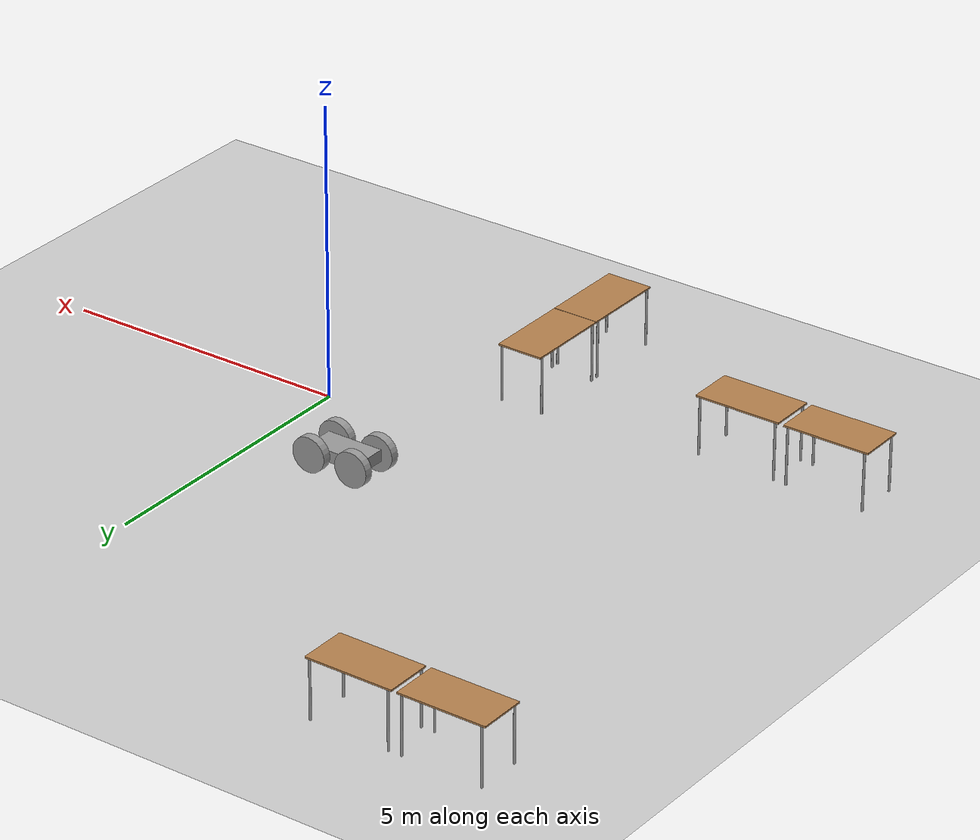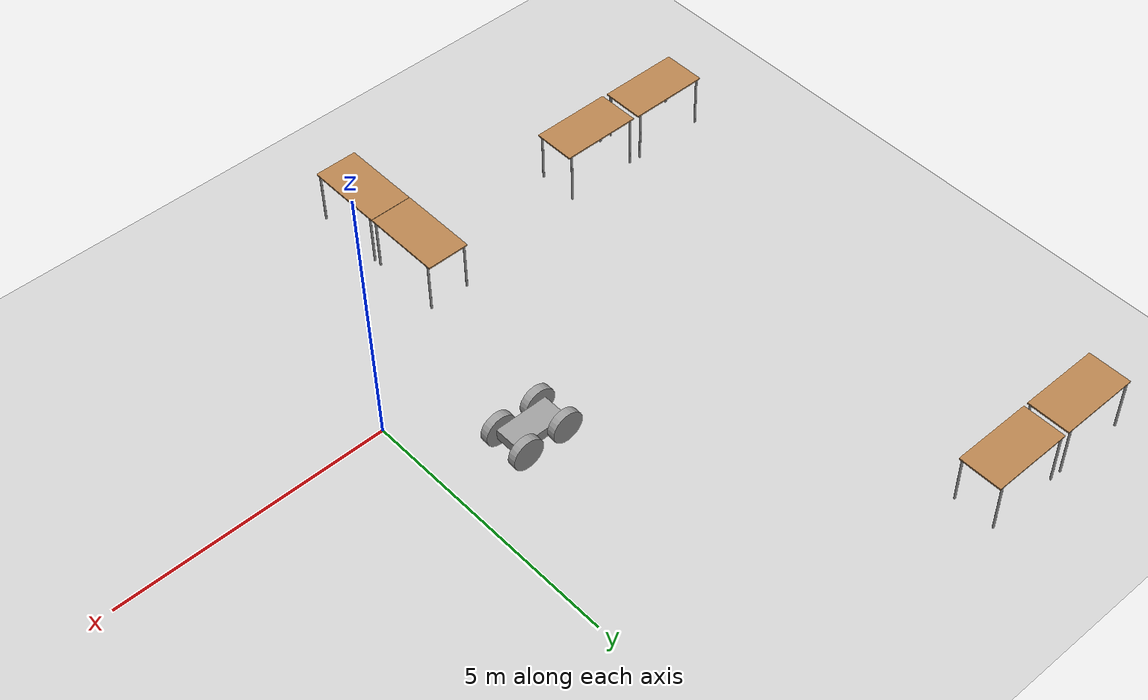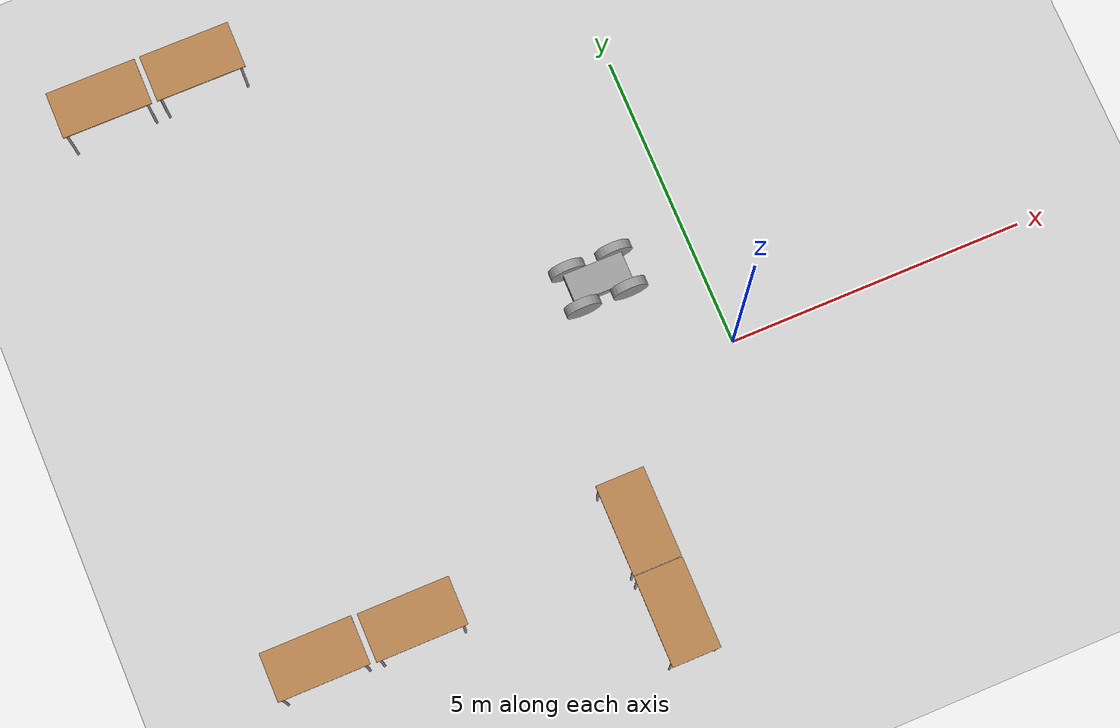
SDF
<sdf version="1.6">
 <world name="default">
  <model name="ground_plane">
   <static>1</static>
   <link name="link">
    <collision name="collision">
     <geometry><plane><normal>0 0 1</normal><size>100 100</size></plane></geometry>
     <surface>
      <contact><collide_bitmask>65535</collide_bitmask></contact>
      <friction><ode><mu>100</mu><mu2>50</mu2></ode></friction>
     </surface>
    </collision>
    <visual name="visual">
     <cast_shadows>0</cast_shadows>
     <geometry><plane><normal>0 0 1</normal><size>100 100</size></plane></geometry>
     <material>
      <script><uri>file://media/materials/scripts/gazebo.material</uri><name>Gazebo/Grey</name></script>
     </material>
    </visual>
   </link>
  </model>
  <model name="table">
   <static>1</static>
   <link name="link">
    <collision name="surface">
     <pose>0 0 1 0 -0 0</pose>
     <geometry><box><size>1.5 0.8 0.03</size></box></geometry>
     <surface><friction><ode><mu>0.6</mu><mu2>0.6</mu2></ode></friction></surface>
    </collision>
    <visual name="visual1">
     <pose>0 0 1 0 -0 0</pose>
     <geometry><box><size>1.5 0.8 0.03</size></box></geometry>
     <material>
      <script><uri>file://media/materials/scripts/gazebo.material</uri><name>Gazebo/Wood</name></script>
     </material>
    </visual>
    <collision name="front_left_leg">
     <pose>0.68 0.38 0.5 0 -0 0</pose>
     <geometry><cylinder><radius>0.02</radius><length>1</length></cylinder></geometry>
    </collision>
    <visual name="front_left_leg">
     <pose>0.68 0.38 0.5 0 -0 0</pose>
     <geometry><cylinder><radius>0.02</radius><length>1</length></cylinder></geometry>
     <material>
      <script><uri>file://media/materials/scripts/gazebo.material</uri><name>Gazebo/Grey</name></script>
     </material>
    </visual>
    <collision name="front_right_leg">
     <pose>0.68 -0.38 0.5 0 -0 0</pose>
     <geometry><cylinder><radius>0.02</radius><length>1</length></cylinder></geometry>
    </collision>
    <visual name="front_right_leg">
     <pose>0.68 -0.38 0.5 0 -0 0</pose>
     <geometry><cylinder><radius>0.02</radius><length>1</length></cylinder></geometry>
     <material>
      <script><uri>file://media/materials/scripts/gazebo.material</uri><name>Gazebo/Grey</name></script>
     </material>
    </visual>
    <collision name="back_right_leg">
     <pose>-0.68 -0.38 0.5 0 -0 0</pose>
     <geometry><cylinder><radius>0.02</radius><length>1</length></cylinder></geometry>
    </collision>
    <visual name="back_right_leg">
     <pose>-0.68 -0.38 0.5 0 -0 0</pose>
     <geometry><cylinder><radius>0.02</radius><length>1</length></cylinder></geometry>
     <material>
      <script><uri>file://media/materials/scripts/gazebo.material</uri><name>Gazebo/Grey</name></script>
     </material>
    </visual>
    <collision name="back_left_leg">
     <pose>-0.68 0.38 0.5 0 -0 0</pose>
     <geometry><cylinder><radius>0.02</radius><length>1</length></cylinder></geometry>
    </collision>
    <visual name="back_left_leg">
     <pose>-0.68 0.38 0.5 0 -0 0</pose>
     <geometry><cylinder><radius>0.02</radius><length>1</length></cylinder></geometry>
     <material>
      <script><uri>file://media/materials/scripts/gazebo.material</uri><name>Gazebo/Grey</name></script>
     </material>
    </visual>
   </link>
   <pose>-2.6 -2.20171 0 0 -0 1.57</pose>
  </model>
  <model name="table_clone">
   <static>1</static>
   <link name="link">
    <collision name="surface">
     <pose>0 0 1 0 -0 0</pose>
     <geometry><box><size>1.5 0.8 0.03</size></box></geometry>
     <surface><friction><ode><mu>0.6</mu><mu2>0.6</mu2></ode></friction></surface>
    </collision>
    <visual name="visual1">
     <pose>0 0 1 0 -0 0</pose>
     <geometry><box><size>1.5 0.8 0.03</size></box></geometry>
     <material>
      <script><uri>file://media/materials/scripts/gazebo.material</uri><name>Gazebo/Wood</name></script>
     </material>
    </visual>
    <collision name="front_left_leg">
     <pose>0.68 0.38 0.5 0 -0 0</pose>
     <geometry><cylinder><radius>0.02</radius><length>1</length></cylinder></geometry>
    </collision>
    <visual name="front_left_leg">
     <pose>0.68 0.38 0.5 0 -0 0</pose>
     <geometry><cylinder><radius>0.02</radius><length>1</length></cylinder></geometry>
     <material>
      <script><uri>file://media/materials/scripts/gazebo.material</uri><name>Gazebo/Grey</name></script>
     </material>
    </visual>
    <collision name="front_right_leg">
     <pose>0.68 -0.38 0.5 0 -0 0</pose>
     <geometry><cylinder><radius>0.02</radius><length>1</length></cylinder></geometry>
    </collision>
    <visual name="front_right_leg">
     <pose>0.68 -0.38 0.5 0 -0 0</pose>
     <geometry><cylinder><radius>0.02</radius><length>1</length></cylinder></geometry>
     <material>
      <script><uri>file://media/materials/scripts/gazebo.material</uri><name>Gazebo/Grey</name></script>
     </material>
    </visual>
    <collision name="back_right_leg">
     <pose>-0.68 -0.38 0.5 0 -0 0</pose>
     <geometry><cylinder><radius>0.02</radius><length>1</length></cylinder></geometry>
    </collision>
    <visual name="back_right_leg">
     <pose>-0.68 -0.38 0.5 0 -0 0</pose>
     <geometry><cylinder><radius>0.02</radius><length>1</length></cylinder></geometry>
     <material>
      <script><uri>file://media/materials/scripts/gazebo.material</uri><name>Gazebo/Grey</name></script>
     </material>
    </visual>
    <collision name="back_left_leg">
     <pose>-0.68 0.38 0.5 0 -0 0</pose>
     <geometry><cylinder><radius>0.02</radius><length>1</length></cylinder></geometry>
    </collision>
    <visual name="back_left_leg">
     <pose>-0.68 0.38 0.5 0 -0 0</pose>
     <geometry><cylinder><radius>0.02</radius><length>1</length></cylinder></geometry>
     <material>
      <script><uri>file://media/materials/scripts/gazebo.material</uri><name>Gazebo/Grey</name></script>
     </material>
    </visual>
   </link>
   <pose>-2.59868 -3.71187 0 0 -0 1.57</pose>
  </model>
  <model name="table_clone_0">
   <static>1</static>
   <link name="link">
    <collision name="surface">
     <pose>0 0 1 0 -0 0</pose>
     <geometry><box><size>1.5 0.8 0.03</size></box></geometry>
     <surface><friction><ode><mu>0.6</mu><mu2>0.6</mu2></ode></friction></surface>
    </collision>
    <visual name="visual1">
     <pose>0 0 1 0 -0 0</pose>
     <geometry><box><size>1.5 0.8 0.03</size></box></geometry>
     <material>
      <script><uri>file://media/materials/scripts/gazebo.material</uri><name>Gazebo/Wood</name></script>
     </material>
    </visual>
    <collision name="front_left_leg">
     <pose>0.68 0.38 0.5 0 -0 0</pose>
     <geometry><cylinder><radius>0.02</radius><length>1</length></cylinder></geometry>
    </collision>
    <visual name="front_left_leg">
     <pose>0.68 0.38 0.5 0 -0 0</pose>
     <geometry><cylinder><radius>0.02</radius><length>1</length></cylinder></geometry>
     <material>
      <script><uri>file://media/materials/scripts/gazebo.material</uri><name>Gazebo/Grey</name></script>
     </material>
    </visual>
    <collision name="front_right_leg">
     <pose>0.68 -0.38 0.5 0 -0 0</pose>
     <geometry><cylinder><radius>0.02</radius><length>1</length></cylinder></geometry>
    </collision>
    <visual name="front_right_leg">
     <pose>0.68 -0.38 0.5 0 -0 0</pose>
     <geometry><cylinder><radius>0.02</radius><length>1</length></cylinder></geometry>
     <material>
      <script><uri>file://media/materials/scripts/gazebo.material</uri><name>Gazebo/Grey</name></script>
     </material>
    </visual>
    <collision name="back_right_leg">
     <pose>-0.68 -0.38 0.5 0 -0 0</pose>
     <geometry><cylinder><radius>0.02</radius><length>1</length></cylinder></geometry>
    </collision>
    <visual name="back_right_leg">
     <pose>-0.68 -0.38 0.5 0 -0 0</pose>
     <geometry><cylinder><radius>0.02</radius><length>1</length></cylinder></geometry>
     <material>
      <script><uri>file://media/materials/scripts/gazebo.material</uri><name>Gazebo/Grey</name></script>
     </material>
    </visual>
    <collision name="back_left_leg">
     <pose>-0.68 0.38 0.5 0 -0 0</pose>
     <geometry><cylinder><radius>0.02</radius><length>1</length></cylinder></geometry>
    </collision>
    <visual name="back_left_leg">
     <pose>-0.68 0.38 0.5 0 -0 0</pose>
     <geometry><cylinder><radius>0.02</radius><length>1</length></cylinder></geometry>
     <material>
      <script><uri>file://media/materials/scripts/gazebo.material</uri><name>Gazebo/Grey</name></script>
     </material>
    </visual>
   </link>
   <pose>-7.94747 -2.24435 0 0 -0 0</pose>
  </model>
  <model name="table_clone_0_clone">
   <static>1</static>
   <link name="link">
    <collision name="surface">
     <pose>0 0 1 0 -0 0</pose>
     <geometry><box><size>1.5 0.8 0.03</size></box></geometry>
     <surface><friction><ode><mu>0.6</mu><mu2>0.6</mu2></ode></friction></surface>
    </collision>
    <visual name="visual1">
     <pose>0 0 1 0 -0 0</pose>
     <geometry><box><size>1.5 0.8 0.03</size></box></geometry>
     <material>
      <script><uri>file://media/materials/scripts/gazebo.material</uri><name>Gazebo/Wood</name></script>
     </material>
    </visual>
    <collision name="front_left_leg">
     <pose>0.68 0.38 0.5 0 -0 0</pose>
     <geometry><cylinder><radius>0.02</radius><length>1</length></cylinder></geometry>
    </collision>
    <visual name="front_left_leg">
     <pose>0.68 0.38 0.5 0 -0 0</pose>
     <geometry><cylinder><radius>0.02</radius><length>1</length></cylinder></geometry>
     <material>
      <script><uri>file://media/materials/scripts/gazebo.material</uri><name>Gazebo/Grey</name></script>
     </material>
    </visual>
    <collision name="front_right_leg">
     <pose>0.68 -0.38 0.5 0 -0 0</pose>
     <geometry><cylinder><radius>0.02</radius><length>1</length></cylinder></geometry>
    </collision>
    <visual name="front_right_leg">
     <pose>0.68 -0.38 0.5 0 -0 0</pose>
     <geometry><cylinder><radius>0.02</radius><length>1</length></cylinder></geometry>
     <material>
      <script><uri>file://media/materials/scripts/gazebo.material</uri><name>Gazebo/Grey</name></script>
     </material>
    </visual>
    <collision name="back_right_leg">
     <pose>-0.68 -0.38 0.5 0 -0 0</pose>
     <geometry><cylinder><radius>0.02</radius><length>1</length></cylinder></geometry>
    </collision>
    <visual name="back_right_leg">
     <pose>-0.68 -0.38 0.5 0 -0 0</pose>
     <geometry><cylinder><radius>0.02</radius><length>1</length></cylinder></geometry>
     <material>
      <script><uri>file://media/materials/scripts/gazebo.material</uri><name>Gazebo/Grey</name></script>
     </material>
    </visual>
    <collision name="back_left_leg">
     <pose>-0.68 0.38 0.5 0 -0 0</pose>
     <geometry><cylinder><radius>0.02</radius><length>1</length></cylinder></geometry>
    </collision>
    <visual name="back_left_leg">
     <pose>-0.68 0.38 0.5 0 -0 0</pose>
     <geometry><cylinder><radius>0.02</radius><length>1</length></cylinder></geometry>
     <material>
      <script><uri>file://media/materials/scripts/gazebo.material</uri><name>Gazebo/Grey</name></script>
     </material>
    </visual>
   </link>
   <pose>-6.35342 -2.25914 0 0 -0 0</pose>
  </model>
  <model name="table_clone_0_clone_0">
   <static>1</static>
   <link name="link">
    <collision name="surface">
     <pose>0 0 1 0 -0 0</pose>
     <geometry><box><size>1.5 0.8 0.03</size></box></geometry>
     <surface><friction><ode><mu>0.6</mu><mu2>0.6</mu2></ode></friction></surface>
    </collision>
    <visual name="visual1">
     <pose>0 0 1 0 -0 0</pose>
     <geometry><box><size>1.5 0.8 0.03</size></box></geometry>
     <material>
      <script><uri>file://media/materials/scripts/gazebo.material</uri><name>Gazebo/Wood</name></script>
     </material>
    </visual>
    <collision name="front_left_leg">
     <pose>0.68 0.38 0.5 0 -0 0</pose>
     <geometry><cylinder><radius>0.02</radius><length>1</length></cylinder></geometry>
    </collision>
    <visual name="front_left_leg">
     <pose>0.68 0.38 0.5 0 -0 0</pose>
     <geometry><cylinder><radius>0.02</radius><length>1</length></cylinder></geometry>
     <material>
      <script><uri>file://media/materials/scripts/gazebo.material</uri><name>Gazebo/Grey</name></script>
     </material>
    </visual>
    <collision name="front_right_leg">
     <pose>0.68 -0.38 0.5 0 -0 0</pose>
     <geometry><cylinder><radius>0.02</radius><length>1</length></cylinder></geometry>
    </collision>
    <visual name="front_right_leg">
     <pose>0.68 -0.38 0.5 0 -0 0</pose>
     <geometry><cylinder><radius>0.02</radius><length>1</length></cylinder></geometry>
     <material>
      <script><uri>file://media/materials/scripts/gazebo.material</uri><name>Gazebo/Grey</name></script>
     </material>
    </visual>
    <collision name="back_right_leg">
     <pose>-0.68 -0.38 0.5 0 -0 0</pose>
     <geometry><cylinder><radius>0.02</radius><length>1</length></cylinder></geometry>
    </collision>
    <visual name="back_right_leg">
     <pose>-0.68 -0.38 0.5 0 -0 0</pose>
     <geometry><cylinder><radius>0.02</radius><length>1</length></cylinder></geometry>
     <material>
      <script><uri>file://media/materials/scripts/gazebo.material</uri><name>Gazebo/Grey</name></script>
     </material>
    </visual>
    <collision name="back_left_leg">
     <pose>-0.68 0.38 0.5 0 -0 0</pose>
     <geometry><cylinder><radius>0.02</radius><length>1</length></cylinder></geometry>
    </collision>
    <visual name="back_left_leg">
     <pose>-0.68 0.38 0.5 0 -0 0</pose>
     <geometry><cylinder><radius>0.02</radius><length>1</length></cylinder></geometry>
     <material>
      <script><uri>file://media/materials/scripts/gazebo.material</uri><name>Gazebo/Grey</name></script>
     </material>
    </visual>
   </link>
   <pose>-7.84859 7.31811 0 0 -0 0</pose>
  </model>
  <model name="table_clone_0_clone_0_clone">
   <static>1</static>
   <link name="link">
    <collision name="surface">
     <pose>0 0 1 0 -0 0</pose>
     <geometry><box><size>1.5 0.8 0.03</size></box></geometry>
     <surface><friction><ode><mu>0.6</mu><mu2>0.6</mu2></ode></friction></surface>
    </collision>
    <visual name="visual1">
     <pose>0 0 1 0 -0 0</pose>
     <geometry><box><size>1.5 0.8 0.03</size></box></geometry>
     <material>
      <script><uri>file://media/materials/scripts/gazebo.material</uri><name>Gazebo/Wood</name></script>
     </material>
    </visual>
    <collision name="front_left_leg">
     <pose>0.68 0.38 0.5 0 -0 0</pose>
     <geometry><cylinder><radius>0.02</radius><length>1</length></cylinder></geometry>
    </collision>
    <visual name="front_left_leg">
     <pose>0.68 0.38 0.5 0 -0 0</pose>
     <geometry><cylinder><radius>0.02</radius><length>1</length></cylinder></geometry>
     <material>
      <script><uri>file://media/materials/scripts/gazebo.material</uri><name>Gazebo/Grey</name></script>
     </material>
    </visual>
    <collision name="front_right_leg">
     <pose>0.68 -0.38 0.5 0 -0 0</pose>
     <geometry><cylinder><radius>0.02</radius><length>1</length></cylinder></geometry>
    </collision>
    <visual name="front_right_leg">
     <pose>0.68 -0.38 0.5 0 -0 0</pose>
     <geometry><cylinder><radius>0.02</radius><length>1</length></cylinder></geometry>
     <material>
      <script><uri>file://media/materials/scripts/gazebo.material</uri><name>Gazebo/Grey</name></script>
     </material>
    </visual>
    <collision name="back_right_leg">
     <pose>-0.68 -0.38 0.5 0 -0 0</pose>
     <geometry><cylinder><radius>0.02</radius><length>1</length></cylinder></geometry>
    </collision>
    <visual name="back_right_leg">
     <pose>-0.68 -0.38 0.5 0 -0 0</pose>
     <geometry><cylinder><radius>0.02</radius><length>1</length></cylinder></geometry>
     <material>
      <script><uri>file://media/materials/scripts/gazebo.material</uri><name>Gazebo/Grey</name></script>
     </material>
    </visual>
    <collision name="back_left_leg">
     <pose>-0.68 0.38 0.5 0 -0 0</pose>
     <geometry><cylinder><radius>0.02</radius><length>1</length></cylinder></geometry>
    </collision>
    <visual name="back_left_leg">
     <pose>-0.68 0.38 0.5 0 -0 0</pose>
     <geometry><cylinder><radius>0.02</radius><length>1</length></cylinder></geometry>
     <material>
      <script><uri>file://media/materials/scripts/gazebo.material</uri><name>Gazebo/Grey</name></script>
     </material>
    </visual>
   </link>
   <pose>-6.26011 7.31977 0 0 -0 0</pose>
  </model>
  <model name="4WheelRobot">
   <link name="link_0">
    <pose>-1e-06 -1e-06 0 0 -0 0</pose>
    <inertial>
     <mass>1</mass>
     <inertia>
      <ixx>0.166667</ixx>
      <ixy>0</ixy>
      <ixz>0</ixz>
      <iyy>0.166667</iyy>
      <iyz>0</iyz>
      <izz>0.166667</izz>
     </inertia>
    </inertial>
    <visual name="visual">
     <geometry><box><size>1 0.5 0.2</size></box></geometry>
     <material>
      <lighting>1</lighting>
      <script><uri>file://media/materials/scripts/gazebo.material</uri><name>Gazebo/Grey</name></script>
      <shader type="pixel"><normal_map>__default__</normal_map></shader>
      <ambient>0.3 0.3 0.3 1</ambient>
      <diffuse>0.7 0.7 0.7 1</diffuse>
      <specular>0.01 0.01 0.01 1</specular>
      <emissive>0 0 0 1</emissive>
     </material>
    </visual>
    <collision name="collision">
     <geometry><box><size>1 0.5 0.2</size></box></geometry>
     <surface>
      <friction>
       <ode><mu>1</mu><mu2>1</mu2><fdir1>0 0 0</fdir1><slip1>0</slip1><slip2>0</slip2></ode>
       <torsional>
        <coefficient>1</coefficient>
        <patch_radius>0</patch_radius>
        <surface_radius>0</surface_radius>
        <use_patch_radius>1</use_patch_radius>
        <ode><slip>0</slip></ode>
       </torsional>
      </friction>
      <bounce><restitution_coefficient>0</restitution_coefficient><threshold>1e+06</threshold></bounce>
      <contact>
       <collide_without_contact>0</collide_without_contact>
       <collide_without_contact_bitmask>1</collide_without_contact_bitmask>
       <collide_bitmask>1</collide_bitmask>
       <ode>
        <soft_cfm>0</soft_cfm>
        <soft_erp>0.2</soft_erp>
        <kp>1e+13</kp>
        <kd>1</kd>
        <max_vel>0.01</max_vel>
        <min_depth>0</min_depth>
       </ode>
       <bullet>
        <split_impulse>1</split_impulse>
        <split_impulse_penetration_threshold>-0.01</split_impulse_penetration_threshold>
        <soft_cfm>0</soft_cfm>
        <soft_erp>0.2</soft_erp>
        <kp>1e+13</kp>
        <kd>1</kd>
       </bullet>
      </contact>
     </surface>
    </collision>
   </link>
   <link name="link_1">
    <pose>-0.400001 -0.32524 0 1.57 -0 0</pose>
    <inertial>
     <mass>1</mass>
     <inertia><ixx>0.145833</ixx><ixy>0</ixy><ixz>0</ixz><iyy>0.145833</iyy><iyz>0</iyz><izz>0.125</izz></inertia>
    </inertial>
    <visual name="visual">
     <geometry><cylinder><radius>0.3</radius><length>0.15</length></cylinder></geometry>
     <material>
      <lighting>1</lighting>
      <script><uri>file://media/materials/scripts/gazebo.material</uri><name>Gazebo/Grey</name></script>
      <shader type="pixel"><normal_map>__default__</normal_map></shader>
      <ambient>0.3 0.3 0.3 1</ambient>
      <diffuse>0.7 0.7 0.7 1</diffuse>
      <specular>0.01 0.01 0.01 1</specular>
      <emissive>0 0 0 1</emissive>
     </material>
    </visual>
    <collision name="collision">
     <geometry><cylinder><radius>0.3</radius><length>0.15</length></cylinder></geometry>
     <surface>
      <friction>
       <ode><mu>1</mu><mu2>1</mu2><fdir1>0 0 0</fdir1><slip1>0</slip1><slip2>0</slip2></ode>
       <torsional>
        <coefficient>1</coefficient>
        <patch_radius>0</patch_radius>
        <surface_radius>0</surface_radius>
        <use_patch_radius>1</use_patch_radius>
        <ode><slip>0</slip></ode>
       </torsional>
      </friction>
      <bounce><restitution_coefficient>0</restitution_coefficient><threshold>1e+06</threshold></bounce>
      <contact>
       <collide_without_contact>0</collide_without_contact>
       <collide_without_contact_bitmask>1</collide_without_contact_bitmask>
       <collide_bitmask>1</collide_bitmask>
       <ode>
        <soft_cfm>0</soft_cfm>
        <soft_erp>0.2</soft_erp>
        <kp>1e+13</kp>
        <kd>1</kd>
        <max_vel>0.01</max_vel>
        <min_depth>0</min_depth>
       </ode>
       <bullet>
        <split_impulse>1</split_impulse>
        <split_impulse_penetration_threshold>-0.01</split_impulse_penetration_threshold>
        <soft_cfm>0</soft_cfm>
        <soft_erp>0.2</soft_erp>
        <kp>1e+13</kp>
        <kd>1</kd>
       </bullet>
      </contact>
     </surface>
    </collision>
   </link>
   <link name="link_1_clone">
    <pose>0.399999 -0.32524 0 1.57 -0 0</pose>
    <inertial>
     <mass>1</mass>
     <inertia><ixx>0.145833</ixx><ixy>0</ixy><ixz>0</ixz><iyy>0.145833</iyy><iyz>0</iyz><izz>0.125</izz></inertia>
    </inertial>
    <visual name="visual">
     <geometry><cylinder><radius>0.3</radius><length>0.15</length></cylinder></geometry>
     <material>
      <lighting>1</lighting>
      <script><uri>file://media/materials/scripts/gazebo.material</uri><name>Gazebo/Grey</name></script>
      <shader type="pixel"><normal_map>__default__</normal_map></shader>
      <ambient>0.3 0.3 0.3 1</ambient>
      <diffuse>0.7 0.7 0.7 1</diffuse>
      <specular>0.01 0.01 0.01 1</specular>
      <emissive>0 0 0 1</emissive>
     </material>
    </visual>
    <collision name="collision">
     <geometry><cylinder><radius>0.3</radius><length>0.15</length></cylinder></geometry>
     <surface>
      <friction>
       <ode><mu>1</mu><mu2>1</mu2><fdir1>0 0 0</fdir1><slip1>0</slip1><slip2>0</slip2></ode>
       <torsional>
        <coefficient>1</coefficient>
        <patch_radius>0</patch_radius>
        <surface_radius>0</surface_radius>
        <use_patch_radius>1</use_patch_radius>
        <ode><slip>0</slip></ode>
       </torsional>
      </friction>
      <bounce><restitution_coefficient>0</restitution_coefficient><threshold>1e+06</threshold></bounce>
      <contact>
       <collide_without_contact>0</collide_without_contact>
       <collide_without_contact_bitmask>1</collide_without_contact_bitmask>
       <collide_bitmask>1</collide_bitmask>
       <ode>
        <soft_cfm>0</soft_cfm>
        <soft_erp>0.2</soft_erp>
        <kp>1e+13</kp>
        <kd>1</kd>
        <max_vel>0.01</max_vel>
        <min_depth>0</min_depth>
       </ode>
       <bullet>
        <split_impulse>1</split_impulse>
        <split_impulse_penetration_threshold>-0.01</split_impulse_penetration_threshold>
        <soft_cfm>0</soft_cfm>
        <soft_erp>0.2</soft_erp>
        <kp>1e+13</kp>
        <kd>1</kd>
       </bullet>
      </contact>
     </surface>
    </collision>
   </link>
   <link name="link_1_clone_clone">
    <pose>-0.400001 0.325238 0 1.57 -0 0</pose>
    <inertial>
     <mass>1</mass>
     <inertia><ixx>0.145833</ixx><ixy>0</ixy><ixz>0</ixz><iyy>0.145833</iyy><iyz>0</iyz><izz>0.125</izz></inertia>
    </inertial>
    <visual name="visual">
     <geometry><cylinder><radius>0.3</radius><length>0.15</length></cylinder></geometry>
     <material>
      <lighting>1</lighting>
      <script><uri>file://media/materials/scripts/gazebo.material</uri><name>Gazebo/Grey</name></script>
      <shader type="pixel"><normal_map>__default__</normal_map></shader>
      <ambient>0.3 0.3 0.3 1</ambient>
      <diffuse>0.7 0.7 0.7 1</diffuse>
      <specular>0.01 0.01 0.01 1</specular>
      <emissive>0 0 0 1</emissive>
     </material>
    </visual>
    <collision name="collision">
     <geometry><cylinder><radius>0.3</radius><length>0.15</length></cylinder></geometry>
     <surface>
      <friction>
       <ode><mu>1</mu><mu2>1</mu2><fdir1>0 0 0</fdir1><slip1>0</slip1><slip2>0</slip2></ode>
       <torsional>
        <coefficient>1</coefficient>
        <patch_radius>0</patch_radius>
        <surface_radius>0</surface_radius>
        <use_patch_radius>1</use_patch_radius>
        <ode><slip>0</slip></ode>
       </torsional>
      </friction>
      <bounce><restitution_coefficient>0</restitution_coefficient><threshold>1e+06</threshold></bounce>
      <contact>
       <collide_without_contact>0</collide_without_contact>
       <collide_without_contact_bitmask>1</collide_without_contact_bitmask>
       <collide_bitmask>1</collide_bitmask>
       <ode>
        <soft_cfm>0</soft_cfm>
        <soft_erp>0.2</soft_erp>
        <kp>1e+13</kp>
        <kd>1</kd>
        <max_vel>0.01</max_vel>
        <min_depth>0</min_depth>
       </ode>
       <bullet>
        <split_impulse>1</split_impulse>
        <split_impulse_penetration_threshold>-0.01</split_impulse_penetration_threshold>
        <soft_cfm>0</soft_cfm>
        <soft_erp>0.2</soft_erp>
        <kp>1e+13</kp>
        <kd>1</kd>
       </bullet>
      </contact>
     </surface>
    </collision>
   </link>
   <link name="link_1_clone_clone_clone">
    <pose>0.399999 0.325238 0 1.57 -0 0</pose>
    <inertial>
     <mass>1</mass>
     <inertia><ixx>0.145833</ixx><ixy>0</ixy><ixz>0</ixz><iyy>0.145833</iyy><iyz>0</iyz><izz>0.125</izz></inertia>
    </inertial>
    <visual name="visual">
     <geometry><cylinder><radius>0.3</radius><length>0.15</length></cylinder></geometry>
     <material>
      <lighting>1</lighting>
      <script><uri>file://media/materials/scripts/gazebo.material</uri><name>Gazebo/Grey</name></script>
      <shader type="pixel"><normal_map>__default__</normal_map></shader>
      <ambient>0.3 0.3 0.3 1</ambient>
      <diffuse>0.7 0.7 0.7 1</diffuse>
      <specular>0.01 0.01 0.01 1</specular>
      <emissive>0 0 0 1</emissive>
     </material>
    </visual>
    <collision name="collision">
     <geometry><cylinder><radius>0.3</radius><length>0.15</length></cylinder></geometry>
     <surface>
      <friction>
       <ode><mu>1</mu><mu2>1</mu2><fdir1>0 0 0</fdir1><slip1>0</slip1><slip2>0</slip2></ode>
       <torsional>
        <coefficient>1</coefficient>
        <patch_radius>0</patch_radius>
        <surface_radius>0</surface_radius>
        <use_patch_radius>1</use_patch_radius>
        <ode><slip>0</slip></ode>
       </torsional>
      </friction>
      <bounce><restitution_coefficient>0</restitution_coefficient><threshold>1e+06</threshold></bounce>
      <contact>
       <collide_without_contact>0</collide_without_contact>
       <collide_without_contact_bitmask>1</collide_without_contact_bitmask>
       <collide_bitmask>1</collide_bitmask>
       <ode>
        <soft_cfm>0</soft_cfm>
        <soft_erp>0.2</soft_erp>
        <kp>1e+13</kp>
        <kd>1</kd>
        <max_vel>0.01</max_vel>
        <min_depth>0</min_depth>
       </ode>
       <bullet>
        <split_impulse>1</split_impulse>
        <split_impulse_penetration_threshold>-0.01</split_impulse_penetration_threshold>
        <soft_cfm>0</soft_cfm>
        <soft_erp>0.2</soft_erp>
        <kp>1e+13</kp>
        <kd>1</kd>
       </bullet>
      </contact>
     </surface>
    </collision>
   </link>
   <joint name="link_0_JOINT_0" type="revolute">
    <parent>link_0</parent>
    <child>link_1</child>
    <axis>
     <xyz>1 0 0</xyz>
     <use_parent_model_frame>0</use_parent_model_frame>
     <limit>
      <lower>-1.79769e+308</lower>
      <upper>1.79769e+308</upper>
      <effort>-1</effort>
      <velocity>-1</velocity>
     </limit>
     <dynamics>
      <spring_reference>0</spring_reference>
      <spring_stiffness>0</spring_stiffness>
      <damping>0</damping>
     </dynamics>
    </axis>
    <physics>
     <ode><limit><cfm>0</cfm><erp>0.2</erp></limit><suspension><cfm>0</cfm><erp>0.2</erp></suspension></ode>
    </physics>
   </joint>
   <joint name="link_0_JOINT_1" type="revolute">
    <parent>link_0</parent>
    <child>link_1_clone</child>
    <axis>
     <xyz>1 0 0</xyz>
     <use_parent_model_frame>0</use_parent_model_frame>
     <limit>
      <lower>-1.79769e+308</lower>
      <upper>1.79769e+308</upper>
      <effort>-1</effort>
      <velocity>-1</velocity>
     </limit>
     <dynamics>
      <spring_reference>0</spring_reference>
      <spring_stiffness>0</spring_stiffness>
      <damping>0</damping>
     </dynamics>
    </axis>
    <physics>
     <ode><limit><cfm>0</cfm><erp>0.2</erp></limit><suspension><cfm>0</cfm><erp>0.2</erp></suspension></ode>
    </physics>
   </joint>
   <joint name="link_0_JOINT_2" type="revolute">
    <parent>link_0</parent>
    <child>link_1_clone_clone</child>
    <axis>
     <xyz>1 0 0</xyz>
     <use_parent_model_frame>0</use_parent_model_frame>
     <limit>
      <lower>-1.79769e+308</lower>
      <upper>1.79769e+308</upper>
      <effort>-1</effort>
      <velocity>-1</velocity>
     </limit>
     <dynamics>
      <spring_reference>0</spring_reference>
      <spring_stiffness>0</spring_stiffness>
      <damping>0</damping>
     </dynamics>
    </axis>
    <physics>
     <ode><limit><cfm>0</cfm><erp>0.2</erp></limit><suspension><cfm>0</cfm><erp>0.2</erp></suspension></ode>
    </physics>
   </joint>
   <joint name="link_0_JOINT_3" type="revolute">
    <parent>link_0</parent>
    <child>link_1_clone_clone_clone</child>
    <axis>
     <xyz>1 0 0</xyz>
     <use_parent_model_frame>0</use_parent_model_frame>
     <limit>
      <lower>-1.79769e+308</lower>
      <upper>1.79769e+308</upper>
      <effort>-1</effort>
      <velocity>-1</velocity>
     </limit>
     <dynamics>
      <spring_reference>0</spring_reference>
      <spring_stiffness>0</spring_stiffness>
      <damping>0</damping>
     </dynamics>
    </axis>
    <physics>
     <ode><limit><cfm>0</cfm><erp>0.2</erp></limit><suspension><cfm>0</cfm><erp>0.2</erp></suspension></ode>
    </physics>
   </joint>
   <static>0</static>
   <pose>-1.61179 1.70699 0.3 0 0 -0.001091</pose>
  </model>
 </world>
</sdf>
